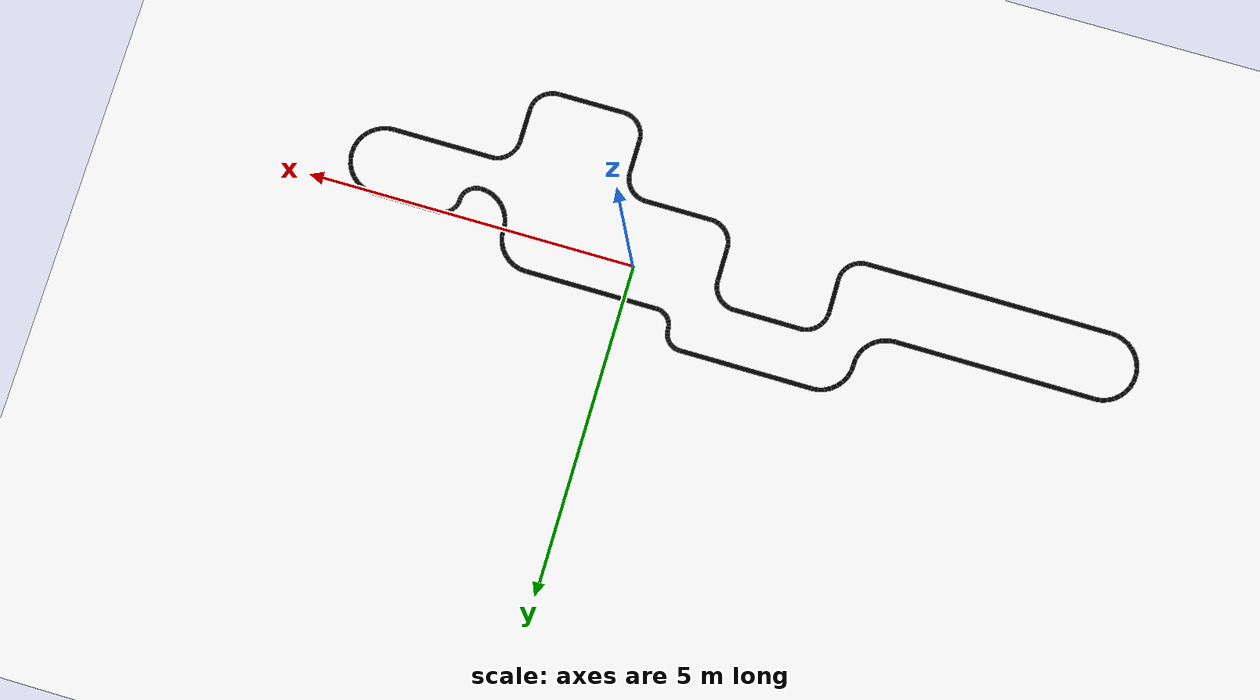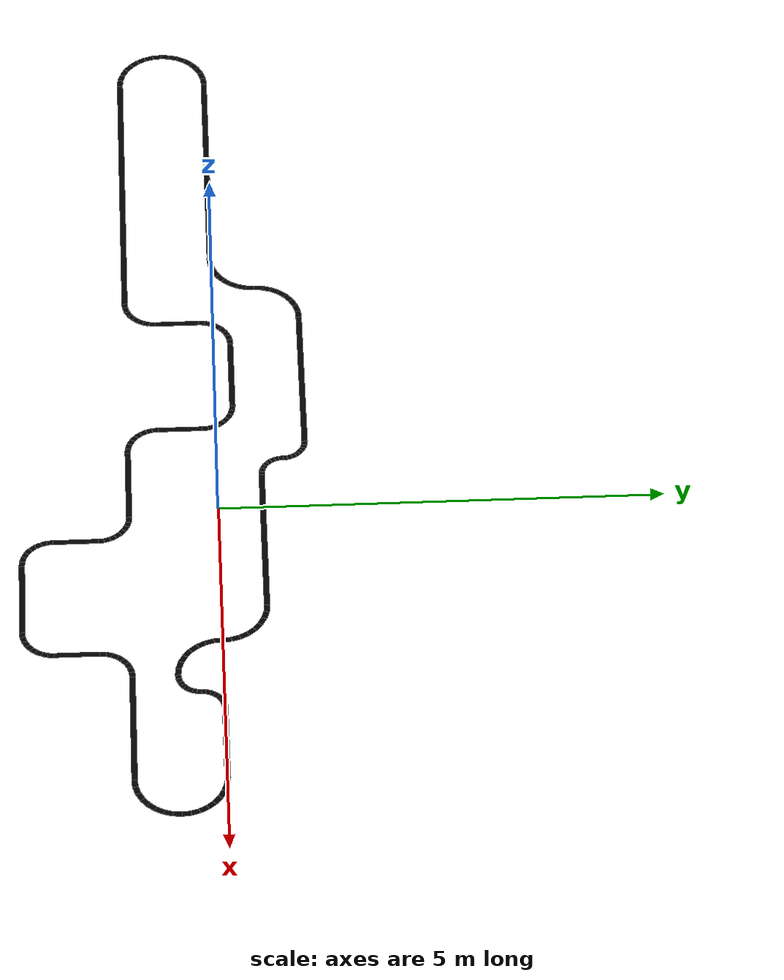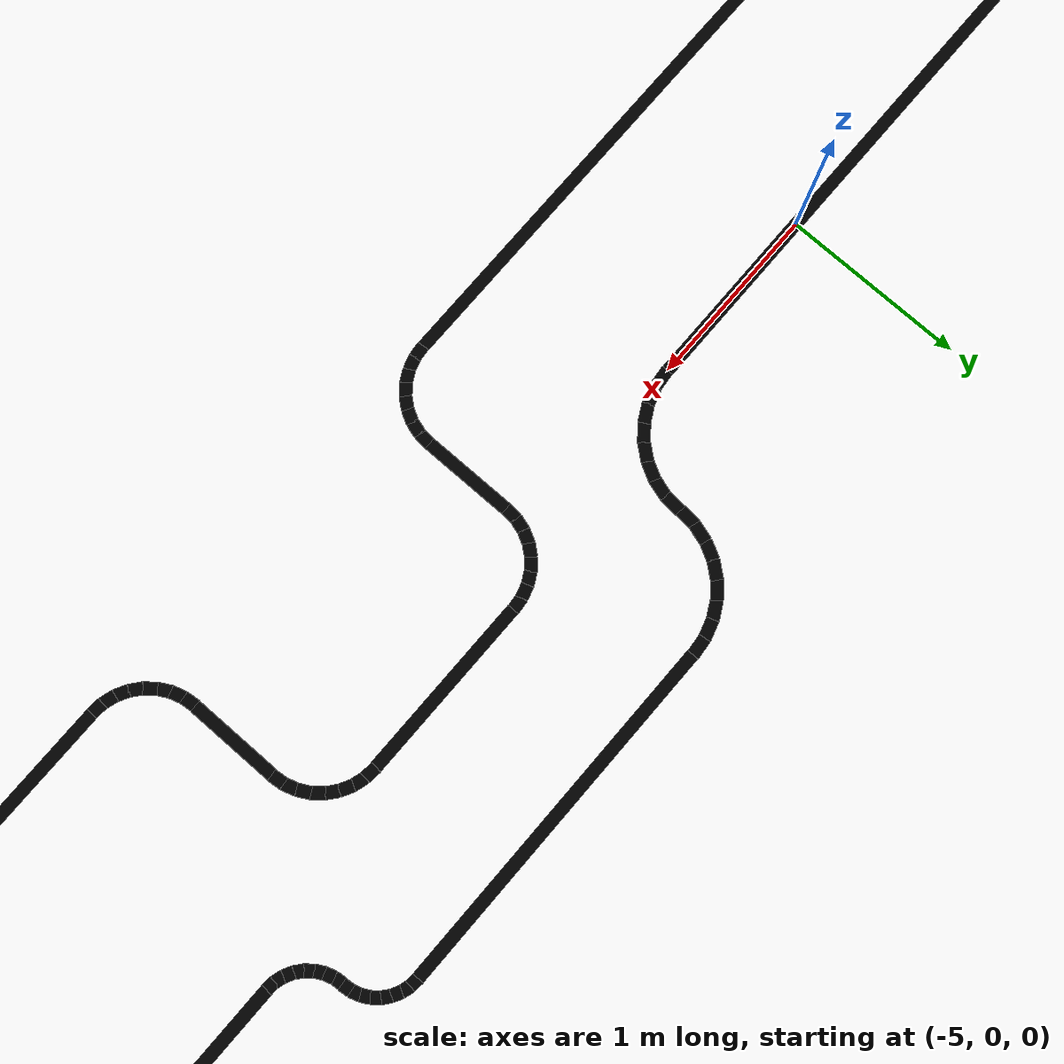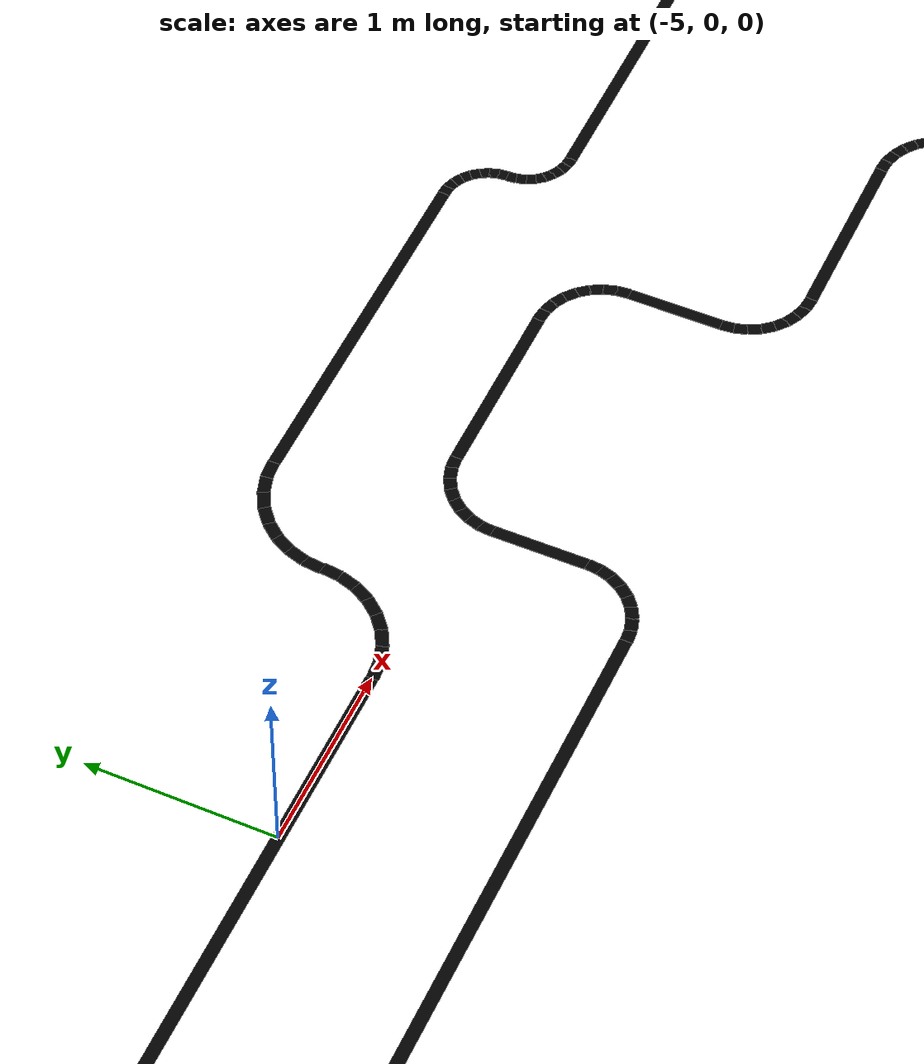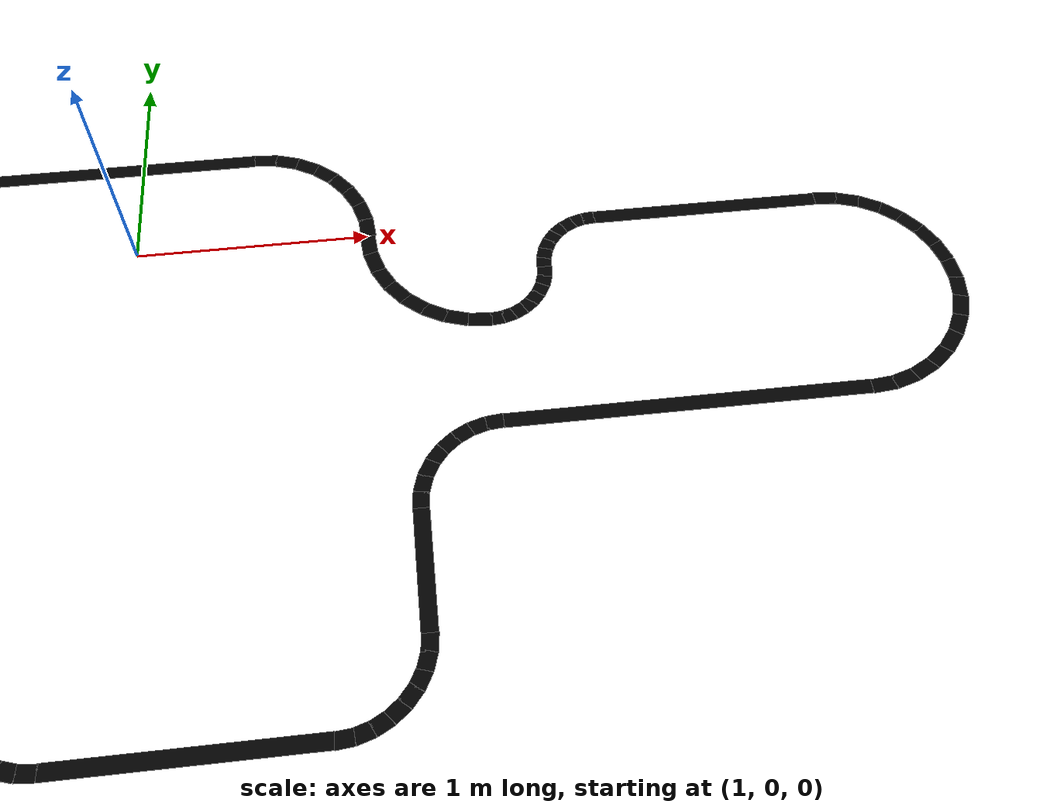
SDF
<?xml version="1.0" ?>
<sdf version="1.6">
  <world name="default">
    <include>
      <uri>model://sun</uri>
    </include>
    <include>
      <uri>model://advanced_track</uri>
    </include>
    <!-- Add some extra lighting if necessary -->
    <light type="directional" name="directional_light_1">
      <pose>0 0 10 0 -1 0</pose>
      <diffuse>0.5 0.5 0.5 1</diffuse>
      <specular>0.1 0.1 0.1 1</specular>
      <direction>0.1 0.1 -0.9</direction>
    </light>
  </world>
</sdf>

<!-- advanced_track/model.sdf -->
<sdf version="1.6">
  <model name="advanced_track">
    <static>true</static>
    <!-- White Floor -->
    <link name="floor">
      <collision name="collision">
        <geometry><plane><normal>0 0 1</normal><size>35 20</size></plane></geometry>
      </collision>
      <visual name="visual">
        <geometry><plane><normal>0 0 1</normal><size>35 20</size></plane></geometry>
        <material>
          <ambient>1 1 1 1</ambient><diffuse>1 1 1 1</diffuse>
          <specular>0.1 0.1 0.1 1</specular>
        </material>
      </visual>
    </link>
    <link name="line_1">
      <pose>-5.5000 0.0000 0.001 0 0 0.000000</pose>
      <visual name="visual">
        <geometry>
          <box><size>3.0000 0.065 0.001</size></box>
        </geometry>
        <material><ambient>0 0 0 1</ambient><diffuse>0 0 0 1</diffuse></material>
      </visual>
    </link>
    <link name="line_2">
      <pose>-3.9510 0.0024 0.001 0 0 0.098175</pose>
      <visual name="visual">
        <geometry>
          <box><size>0.1020 0.065 0.001</size></box>
        </geometry>
        <material><ambient>0 0 0 1</ambient><diffuse>0 0 0 1</diffuse></material>
      </visual>
    </link>
    <link name="line_3">
      <pose>-3.8549 0.0215 0.001 0 0 0.294524</pose>
      <visual name="visual">
        <geometry>
          <box><size>0.1020 0.065 0.001</size></box>
        </geometry>
        <material><ambient>0 0 0 1</ambient><diffuse>0 0 0 1</diffuse></material>
      </visual>
    </link>
    <link name="line_4">
      <pose>-3.7643 0.0590 0.001 0 0 0.490874</pose>
      <visual name="visual">
        <geometry>
          <box><size>0.1020 0.065 0.001</size></box>
        </geometry>
        <material><ambient>0 0 0 1</ambient><diffuse>0 0 0 1</diffuse></material>
      </visual>
    </link>
    <link name="line_5">
      <pose>-3.6828 0.1135 0.001 0 0 0.687223</pose>
      <visual name="visual">
        <geometry>
          <box><size>0.1020 0.065 0.001</size></box>
        </geometry>
        <material><ambient>0 0 0 1</ambient><diffuse>0 0 0 1</diffuse></material>
      </visual>
    </link>
    <link name="line_6">
      <pose>-3.6135 0.1828 0.001 0 0 0.883573</pose>
      <visual name="visual">
        <geometry>
          <box><size>0.1020 0.065 0.001</size></box>
        </geometry>
        <material><ambient>0 0 0 1</ambient><diffuse>0 0 0 1</diffuse></material>
      </visual>
    </link>
    <link name="line_7">
      <pose>-3.5590 0.2643 0.001 0 0 1.079922</pose>
      <visual name="visual">
        <geometry>
          <box><size>0.1020 0.065 0.001</size></box>
        </geometry>
        <material><ambient>0 0 0 1</ambient><diffuse>0 0 0 1</diffuse></material>
      </visual>
    </link>
    <link name="line_8">
      <pose>-3.5215 0.3549 0.001 0 0 1.276272</pose>
      <visual name="visual">
        <geometry>
          <box><size>0.1020 0.065 0.001</size></box>
        </geometry>
        <material><ambient>0 0 0 1</ambient><diffuse>0 0 0 1</diffuse></material>
      </visual>
    </link>
    <link name="line_9">
      <pose>-3.5024 0.4510 0.001 0 0 1.472622</pose>
      <visual name="visual">
        <geometry>
          <box><size>0.1020 0.065 0.001</size></box>
        </geometry>
        <material><ambient>0 0 0 1</ambient><diffuse>0 0 0 1</diffuse></material>
      </visual>
    </link>
    <link name="line_10">
      <pose>-3.4976 0.5490 0.001 0 0 1.472622</pose>
      <visual name="visual">
        <geometry>
          <box><size>0.1020 0.065 0.001</size></box>
        </geometry>
        <material><ambient>0 0 0 1</ambient><diffuse>0 0 0 1</diffuse></material>
      </visual>
    </link>
    <link name="line_11">
      <pose>-3.4785 0.6451 0.001 0 0 1.276272</pose>
      <visual name="visual">
        <geometry>
          <box><size>0.1020 0.065 0.001</size></box>
        </geometry>
        <material><ambient>0 0 0 1</ambient><diffuse>0 0 0 1</diffuse></material>
      </visual>
    </link>
    <link name="line_12">
      <pose>-3.4410 0.7357 0.001 0 0 1.079922</pose>
      <visual name="visual">
        <geometry>
          <box><size>0.1020 0.065 0.001</size></box>
        </geometry>
        <material><ambient>0 0 0 1</ambient><diffuse>0 0 0 1</diffuse></material>
      </visual>
    </link>
    <link name="line_13">
      <pose>-3.3865 0.8172 0.001 0 0 0.883573</pose>
      <visual name="visual">
        <geometry>
          <box><size>0.1020 0.065 0.001</size></box>
        </geometry>
        <material><ambient>0 0 0 1</ambient><diffuse>0 0 0 1</diffuse></material>
      </visual>
    </link>
    <link name="line_14">
      <pose>-3.3172 0.8865 0.001 0 0 0.687223</pose>
      <visual name="visual">
        <geometry>
          <box><size>0.1020 0.065 0.001</size></box>
        </geometry>
        <material><ambient>0 0 0 1</ambient><diffuse>0 0 0 1</diffuse></material>
      </visual>
    </link>
    <link name="line_15">
      <pose>-3.2357 0.9410 0.001 0 0 0.490874</pose>
      <visual name="visual">
        <geometry>
          <box><size>0.1020 0.065 0.001</size></box>
        </geometry>
        <material><ambient>0 0 0 1</ambient><diffuse>0 0 0 1</diffuse></material>
      </visual>
    </link>
    <link name="line_16">
      <pose>-3.1451 0.9785 0.001 0 0 0.294524</pose>
      <visual name="visual">
        <geometry>
          <box><size>0.1020 0.065 0.001</size></box>
        </geometry>
        <material><ambient>0 0 0 1</ambient><diffuse>0 0 0 1</diffuse></material>
      </visual>
    </link>
    <link name="line_17">
      <pose>-3.0490 0.9976 0.001 0 0 0.098175</pose>
      <visual name="visual">
        <geometry>
          <box><size>0.1020 0.065 0.001</size></box>
        </geometry>
        <material><ambient>0 0 0 1</ambient><diffuse>0 0 0 1</diffuse></material>
      </visual>
    </link>
    <link name="line_18">
      <pose>-2.0000 1.0000 0.001 0 0 0.000000</pose>
      <visual name="visual">
        <geometry>
          <box><size>2.0000 0.065 0.001</size></box>
        </geometry>
        <material><ambient>0 0 0 1</ambient><diffuse>0 0 0 1</diffuse></material>
      </visual>
    </link>
    <link name="line_19">
      <pose>-0.9755 0.9988 0.001 0 0 -0.098175</pose>
      <visual name="visual">
        <geometry>
          <box><size>0.0530 0.065 0.001</size></box>
        </geometry>
        <material><ambient>0 0 0 1</ambient><diffuse>0 0 0 1</diffuse></material>
      </visual>
    </link>
    <link name="line_20">
      <pose>-0.9274 0.9892 0.001 0 0 -0.294524</pose>
      <visual name="visual">
        <geometry>
          <box><size>0.0530 0.065 0.001</size></box>
        </geometry>
        <material><ambient>0 0 0 1</ambient><diffuse>0 0 0 1</diffuse></material>
      </visual>
    </link>
    <link name="line_21">
      <pose>-0.8822 0.9705 0.001 0 0 -0.490874</pose>
      <visual name="visual">
        <geometry>
          <box><size>0.0530 0.065 0.001</size></box>
        </geometry>
        <material><ambient>0 0 0 1</ambient><diffuse>0 0 0 1</diffuse></material>
      </visual>
    </link>
    <link name="line_22">
      <pose>-0.8414 0.9433 0.001 0 0 -0.687223</pose>
      <visual name="visual">
        <geometry>
          <box><size>0.0530 0.065 0.001</size></box>
        </geometry>
        <material><ambient>0 0 0 1</ambient><diffuse>0 0 0 1</diffuse></material>
      </visual>
    </link>
    <link name="line_23">
      <pose>-0.8067 0.9086 0.001 0 0 -0.883573</pose>
      <visual name="visual">
        <geometry>
          <box><size>0.0530 0.065 0.001</size></box>
        </geometry>
        <material><ambient>0 0 0 1</ambient><diffuse>0 0 0 1</diffuse></material>
      </visual>
    </link>
    <link name="line_24">
      <pose>-0.7795 0.8678 0.001 0 0 -1.079922</pose>
      <visual name="visual">
        <geometry>
          <box><size>0.0530 0.065 0.001</size></box>
        </geometry>
        <material><ambient>0 0 0 1</ambient><diffuse>0 0 0 1</diffuse></material>
      </visual>
    </link>
    <link name="line_25">
      <pose>-0.7608 0.8226 0.001 0 0 -1.276272</pose>
      <visual name="visual">
        <geometry>
          <box><size>0.0530 0.065 0.001</size></box>
        </geometry>
        <material><ambient>0 0 0 1</ambient><diffuse>0 0 0 1</diffuse></material>
      </visual>
    </link>
    <link name="line_26">
      <pose>-0.7512 0.7745 0.001 0 0 -1.472622</pose>
      <visual name="visual">
        <geometry>
          <box><size>0.0530 0.065 0.001</size></box>
        </geometry>
        <material><ambient>0 0 0 1</ambient><diffuse>0 0 0 1</diffuse></material>
      </visual>
    </link>
    <link name="line_27">
      <pose>-0.7488 0.7255 0.001 0 0 4.810564</pose>
      <visual name="visual">
        <geometry>
          <box><size>0.0530 0.065 0.001</size></box>
        </geometry>
        <material><ambient>0 0 0 1</ambient><diffuse>0 0 0 1</diffuse></material>
      </visual>
    </link>
    <link name="line_28">
      <pose>-0.7392 0.6774 0.001 0 0 5.006913</pose>
      <visual name="visual">
        <geometry>
          <box><size>0.0530 0.065 0.001</size></box>
        </geometry>
        <material><ambient>0 0 0 1</ambient><diffuse>0 0 0 1</diffuse></material>
      </visual>
    </link>
    <link name="line_29">
      <pose>-0.7205 0.6322 0.001 0 0 5.203263</pose>
      <visual name="visual">
        <geometry>
          <box><size>0.0530 0.065 0.001</size></box>
        </geometry>
        <material><ambient>0 0 0 1</ambient><diffuse>0 0 0 1</diffuse></material>
      </visual>
    </link>
    <link name="line_30">
      <pose>-0.6933 0.5914 0.001 0 0 5.399612</pose>
      <visual name="visual">
        <geometry>
          <box><size>0.0530 0.065 0.001</size></box>
        </geometry>
        <material><ambient>0 0 0 1</ambient><diffuse>0 0 0 1</diffuse></material>
      </visual>
    </link>
    <link name="line_31">
      <pose>-0.6586 0.5567 0.001 0 0 5.595962</pose>
      <visual name="visual">
        <geometry>
          <box><size>0.0530 0.065 0.001</size></box>
        </geometry>
        <material><ambient>0 0 0 1</ambient><diffuse>0 0 0 1</diffuse></material>
      </visual>
    </link>
    <link name="line_32">
      <pose>-0.6178 0.5295 0.001 0 0 5.792311</pose>
      <visual name="visual">
        <geometry>
          <box><size>0.0530 0.065 0.001</size></box>
        </geometry>
        <material><ambient>0 0 0 1</ambient><diffuse>0 0 0 1</diffuse></material>
      </visual>
    </link>
    <link name="line_33">
      <pose>-0.5726 0.5108 0.001 0 0 5.988661</pose>
      <visual name="visual">
        <geometry>
          <box><size>0.0530 0.065 0.001</size></box>
        </geometry>
        <material><ambient>0 0 0 1</ambient><diffuse>0 0 0 1</diffuse></material>
      </visual>
    </link>
    <link name="line_34">
      <pose>-0.5245 0.5012 0.001 0 0 6.185011</pose>
      <visual name="visual">
        <geometry>
          <box><size>0.0530 0.065 0.001</size></box>
        </geometry>
        <material><ambient>0 0 0 1</ambient><diffuse>0 0 0 1</diffuse></material>
      </visual>
    </link>
    <link name="line_35">
      <pose>0.5000 0.5000 0.001 0 0 0.000000</pose>
      <visual name="visual">
        <geometry>
          <box><size>2.0000 0.065 0.001</size></box>
        </geometry>
        <material><ambient>0 0 0 1</ambient><diffuse>0 0 0 1</diffuse></material>
      </visual>
    </link>
    <link name="line_36">
      <pose>1.5490 0.4976 0.001 0 0 -0.098175</pose>
      <visual name="visual">
        <geometry>
          <box><size>0.1020 0.065 0.001</size></box>
        </geometry>
        <material><ambient>0 0 0 1</ambient><diffuse>0 0 0 1</diffuse></material>
      </visual>
    </link>
    <link name="line_37">
      <pose>1.6451 0.4785 0.001 0 0 -0.294524</pose>
      <visual name="visual">
        <geometry>
          <box><size>0.1020 0.065 0.001</size></box>
        </geometry>
        <material><ambient>0 0 0 1</ambient><diffuse>0 0 0 1</diffuse></material>
      </visual>
    </link>
    <link name="line_38">
      <pose>1.7357 0.4410 0.001 0 0 -0.490874</pose>
      <visual name="visual">
        <geometry>
          <box><size>0.1020 0.065 0.001</size></box>
        </geometry>
        <material><ambient>0 0 0 1</ambient><diffuse>0 0 0 1</diffuse></material>
      </visual>
    </link>
    <link name="line_39">
      <pose>1.8172 0.3865 0.001 0 0 -0.687223</pose>
      <visual name="visual">
        <geometry>
          <box><size>0.1020 0.065 0.001</size></box>
        </geometry>
        <material><ambient>0 0 0 1</ambient><diffuse>0 0 0 1</diffuse></material>
      </visual>
    </link>
    <link name="line_40">
      <pose>1.8865 0.3172 0.001 0 0 -0.883573</pose>
      <visual name="visual">
        <geometry>
          <box><size>0.1020 0.065 0.001</size></box>
        </geometry>
        <material><ambient>0 0 0 1</ambient><diffuse>0 0 0 1</diffuse></material>
      </visual>
    </link>
    <link name="line_41">
      <pose>1.9410 0.2357 0.001 0 0 -1.079922</pose>
      <visual name="visual">
        <geometry>
          <box><size>0.1020 0.065 0.001</size></box>
        </geometry>
        <material><ambient>0 0 0 1</ambient><diffuse>0 0 0 1</diffuse></material>
      </visual>
    </link>
    <link name="line_42">
      <pose>1.9785 0.1451 0.001 0 0 -1.276272</pose>
      <visual name="visual">
        <geometry>
          <box><size>0.1020 0.065 0.001</size></box>
        </geometry>
        <material><ambient>0 0 0 1</ambient><diffuse>0 0 0 1</diffuse></material>
      </visual>
    </link>
    <link name="line_43">
      <pose>1.9976 0.0490 0.001 0 0 -1.472622</pose>
      <visual name="visual">
        <geometry>
          <box><size>0.1020 0.065 0.001</size></box>
        </geometry>
        <material><ambient>0 0 0 1</ambient><diffuse>0 0 0 1</diffuse></material>
      </visual>
    </link>
    <link name="line_44">
      <pose>2.0024 -0.0490 0.001 0 0 4.810564</pose>
      <visual name="visual">
        <geometry>
          <box><size>0.1020 0.065 0.001</size></box>
        </geometry>
        <material><ambient>0 0 0 1</ambient><diffuse>0 0 0 1</diffuse></material>
      </visual>
    </link>
    <link name="line_45">
      <pose>2.0215 -0.1451 0.001 0 0 5.006913</pose>
      <visual name="visual">
        <geometry>
          <box><size>0.1020 0.065 0.001</size></box>
        </geometry>
        <material><ambient>0 0 0 1</ambient><diffuse>0 0 0 1</diffuse></material>
      </visual>
    </link>
    <link name="line_46">
      <pose>2.0590 -0.2357 0.001 0 0 5.203263</pose>
      <visual name="visual">
        <geometry>
          <box><size>0.1020 0.065 0.001</size></box>
        </geometry>
        <material><ambient>0 0 0 1</ambient><diffuse>0 0 0 1</diffuse></material>
      </visual>
    </link>
    <link name="line_47">
      <pose>2.1135 -0.3172 0.001 0 0 5.399612</pose>
      <visual name="visual">
        <geometry>
          <box><size>0.1020 0.065 0.001</size></box>
        </geometry>
        <material><ambient>0 0 0 1</ambient><diffuse>0 0 0 1</diffuse></material>
      </visual>
    </link>
    <link name="line_48">
      <pose>2.1828 -0.3865 0.001 0 0 5.595962</pose>
      <visual name="visual">
        <geometry>
          <box><size>0.1020 0.065 0.001</size></box>
        </geometry>
        <material><ambient>0 0 0 1</ambient><diffuse>0 0 0 1</diffuse></material>
      </visual>
    </link>
    <link name="line_49">
      <pose>2.2643 -0.4410 0.001 0 0 5.792311</pose>
      <visual name="visual">
        <geometry>
          <box><size>0.1020 0.065 0.001</size></box>
        </geometry>
        <material><ambient>0 0 0 1</ambient><diffuse>0 0 0 1</diffuse></material>
      </visual>
    </link>
    <link name="line_50">
      <pose>2.3549 -0.4785 0.001 0 0 5.988661</pose>
      <visual name="visual">
        <geometry>
          <box><size>0.1020 0.065 0.001</size></box>
        </geometry>
        <material><ambient>0 0 0 1</ambient><diffuse>0 0 0 1</diffuse></material>
      </visual>
    </link>
    <link name="line_51">
      <pose>2.4510 -0.4976 0.001 0 0 6.185011</pose>
      <visual name="visual">
        <geometry>
          <box><size>0.1020 0.065 0.001</size></box>
        </geometry>
        <material><ambient>0 0 0 1</ambient><diffuse>0 0 0 1</diffuse></material>
      </visual>
    </link>
    <link name="line_52">
      <pose>2.5245 -0.4988 0.001 0 0 0.098175</pose>
      <visual name="visual">
        <geometry>
          <box><size>0.0530 0.065 0.001</size></box>
        </geometry>
        <material><ambient>0 0 0 1</ambient><diffuse>0 0 0 1</diffuse></material>
      </visual>
    </link>
    <link name="line_53">
      <pose>2.5726 -0.4892 0.001 0 0 0.294524</pose>
      <visual name="visual">
        <geometry>
          <box><size>0.0530 0.065 0.001</size></box>
        </geometry>
        <material><ambient>0 0 0 1</ambient><diffuse>0 0 0 1</diffuse></material>
      </visual>
    </link>
    <link name="line_54">
      <pose>2.6178 -0.4705 0.001 0 0 0.490874</pose>
      <visual name="visual">
        <geometry>
          <box><size>0.0530 0.065 0.001</size></box>
        </geometry>
        <material><ambient>0 0 0 1</ambient><diffuse>0 0 0 1</diffuse></material>
      </visual>
    </link>
    <link name="line_55">
      <pose>2.6586 -0.4433 0.001 0 0 0.687223</pose>
      <visual name="visual">
        <geometry>
          <box><size>0.0530 0.065 0.001</size></box>
        </geometry>
        <material><ambient>0 0 0 1</ambient><diffuse>0 0 0 1</diffuse></material>
      </visual>
    </link>
    <link name="line_56">
      <pose>2.6933 -0.4086 0.001 0 0 0.883573</pose>
      <visual name="visual">
        <geometry>
          <box><size>0.0530 0.065 0.001</size></box>
        </geometry>
        <material><ambient>0 0 0 1</ambient><diffuse>0 0 0 1</diffuse></material>
      </visual>
    </link>
    <link name="line_57">
      <pose>2.7205 -0.3678 0.001 0 0 1.079922</pose>
      <visual name="visual">
        <geometry>
          <box><size>0.0530 0.065 0.001</size></box>
        </geometry>
        <material><ambient>0 0 0 1</ambient><diffuse>0 0 0 1</diffuse></material>
      </visual>
    </link>
    <link name="line_58">
      <pose>2.7392 -0.3226 0.001 0 0 1.276272</pose>
      <visual name="visual">
        <geometry>
          <box><size>0.0530 0.065 0.001</size></box>
        </geometry>
        <material><ambient>0 0 0 1</ambient><diffuse>0 0 0 1</diffuse></material>
      </visual>
    </link>
    <link name="line_59">
      <pose>2.7488 -0.2745 0.001 0 0 1.472622</pose>
      <visual name="visual">
        <geometry>
          <box><size>0.0530 0.065 0.001</size></box>
        </geometry>
        <material><ambient>0 0 0 1</ambient><diffuse>0 0 0 1</diffuse></material>
      </visual>
    </link>
    <link name="line_60">
      <pose>2.7512 -0.2255 0.001 0 0 1.472622</pose>
      <visual name="visual">
        <geometry>
          <box><size>0.0530 0.065 0.001</size></box>
        </geometry>
        <material><ambient>0 0 0 1</ambient><diffuse>0 0 0 1</diffuse></material>
      </visual>
    </link>
    <link name="line_61">
      <pose>2.7608 -0.1774 0.001 0 0 1.276272</pose>
      <visual name="visual">
        <geometry>
          <box><size>0.0530 0.065 0.001</size></box>
        </geometry>
        <material><ambient>0 0 0 1</ambient><diffuse>0 0 0 1</diffuse></material>
      </visual>
    </link>
    <link name="line_62">
      <pose>2.7795 -0.1322 0.001 0 0 1.079922</pose>
      <visual name="visual">
        <geometry>
          <box><size>0.0530 0.065 0.001</size></box>
        </geometry>
        <material><ambient>0 0 0 1</ambient><diffuse>0 0 0 1</diffuse></material>
      </visual>
    </link>
    <link name="line_63">
      <pose>2.8067 -0.0914 0.001 0 0 0.883573</pose>
      <visual name="visual">
        <geometry>
          <box><size>0.0530 0.065 0.001</size></box>
        </geometry>
        <material><ambient>0 0 0 1</ambient><diffuse>0 0 0 1</diffuse></material>
      </visual>
    </link>
    <link name="line_64">
      <pose>2.8414 -0.0567 0.001 0 0 0.687223</pose>
      <visual name="visual">
        <geometry>
          <box><size>0.0530 0.065 0.001</size></box>
        </geometry>
        <material><ambient>0 0 0 1</ambient><diffuse>0 0 0 1</diffuse></material>
      </visual>
    </link>
    <link name="line_65">
      <pose>2.8822 -0.0295 0.001 0 0 0.490874</pose>
      <visual name="visual">
        <geometry>
          <box><size>0.0530 0.065 0.001</size></box>
        </geometry>
        <material><ambient>0 0 0 1</ambient><diffuse>0 0 0 1</diffuse></material>
      </visual>
    </link>
    <link name="line_66">
      <pose>2.9274 -0.0108 0.001 0 0 0.294524</pose>
      <visual name="visual">
        <geometry>
          <box><size>0.0530 0.065 0.001</size></box>
        </geometry>
        <material><ambient>0 0 0 1</ambient><diffuse>0 0 0 1</diffuse></material>
      </visual>
    </link>
    <link name="line_67">
      <pose>2.9755 -0.0012 0.001 0 0 0.098175</pose>
      <visual name="visual">
        <geometry>
          <box><size>0.0530 0.065 0.001</size></box>
        </geometry>
        <material><ambient>0 0 0 1</ambient><diffuse>0 0 0 1</diffuse></material>
      </visual>
    </link>
    <link name="line_68">
      <pose>3.5000 0.0000 0.001 0 0 0.000000</pose>
      <visual name="visual">
        <geometry>
          <box><size>1.0000 0.065 0.001</size></box>
        </geometry>
        <material><ambient>0 0 0 1</ambient><diffuse>0 0 0 1</diffuse></material>
      </visual>
    </link>
    <link name="line_69">
      <pose>4.0490 -0.0024 0.001 0 0 -0.098175</pose>
      <visual name="visual">
        <geometry>
          <box><size>0.1020 0.065 0.001</size></box>
        </geometry>
        <material><ambient>0 0 0 1</ambient><diffuse>0 0 0 1</diffuse></material>
      </visual>
    </link>
    <link name="line_70">
      <pose>4.1451 -0.0215 0.001 0 0 -0.294524</pose>
      <visual name="visual">
        <geometry>
          <box><size>0.1020 0.065 0.001</size></box>
        </geometry>
        <material><ambient>0 0 0 1</ambient><diffuse>0 0 0 1</diffuse></material>
      </visual>
    </link>
    <link name="line_71">
      <pose>4.2357 -0.0590 0.001 0 0 -0.490874</pose>
      <visual name="visual">
        <geometry>
          <box><size>0.1020 0.065 0.001</size></box>
        </geometry>
        <material><ambient>0 0 0 1</ambient><diffuse>0 0 0 1</diffuse></material>
      </visual>
    </link>
    <link name="line_72">
      <pose>4.3172 -0.1135 0.001 0 0 -0.687223</pose>
      <visual name="visual">
        <geometry>
          <box><size>0.1020 0.065 0.001</size></box>
        </geometry>
        <material><ambient>0 0 0 1</ambient><diffuse>0 0 0 1</diffuse></material>
      </visual>
    </link>
    <link name="line_73">
      <pose>4.3865 -0.1828 0.001 0 0 -0.883573</pose>
      <visual name="visual">
        <geometry>
          <box><size>0.1020 0.065 0.001</size></box>
        </geometry>
        <material><ambient>0 0 0 1</ambient><diffuse>0 0 0 1</diffuse></material>
      </visual>
    </link>
    <link name="line_74">
      <pose>4.4410 -0.2643 0.001 0 0 -1.079922</pose>
      <visual name="visual">
        <geometry>
          <box><size>0.1020 0.065 0.001</size></box>
        </geometry>
        <material><ambient>0 0 0 1</ambient><diffuse>0 0 0 1</diffuse></material>
      </visual>
    </link>
    <link name="line_75">
      <pose>4.4785 -0.3549 0.001 0 0 -1.276272</pose>
      <visual name="visual">
        <geometry>
          <box><size>0.1020 0.065 0.001</size></box>
        </geometry>
        <material><ambient>0 0 0 1</ambient><diffuse>0 0 0 1</diffuse></material>
      </visual>
    </link>
    <link name="line_76">
      <pose>4.4976 -0.4510 0.001 0 0 -1.472622</pose>
      <visual name="visual">
        <geometry>
          <box><size>0.1020 0.065 0.001</size></box>
        </geometry>
        <material><ambient>0 0 0 1</ambient><diffuse>0 0 0 1</diffuse></material>
      </visual>
    </link>
    <link name="line_77">
      <pose>4.4976 -0.5490 0.001 0 0 -1.668971</pose>
      <visual name="visual">
        <geometry>
          <box><size>0.1020 0.065 0.001</size></box>
        </geometry>
        <material><ambient>0 0 0 1</ambient><diffuse>0 0 0 1</diffuse></material>
      </visual>
    </link>
    <link name="line_78">
      <pose>4.4785 -0.6451 0.001 0 0 -1.865321</pose>
      <visual name="visual">
        <geometry>
          <box><size>0.1020 0.065 0.001</size></box>
        </geometry>
        <material><ambient>0 0 0 1</ambient><diffuse>0 0 0 1</diffuse></material>
      </visual>
    </link>
    <link name="line_79">
      <pose>4.4410 -0.7357 0.001 0 0 -2.061670</pose>
      <visual name="visual">
        <geometry>
          <box><size>0.1020 0.065 0.001</size></box>
        </geometry>
        <material><ambient>0 0 0 1</ambient><diffuse>0 0 0 1</diffuse></material>
      </visual>
    </link>
    <link name="line_80">
      <pose>4.3865 -0.8172 0.001 0 0 -2.258020</pose>
      <visual name="visual">
        <geometry>
          <box><size>0.1020 0.065 0.001</size></box>
        </geometry>
        <material><ambient>0 0 0 1</ambient><diffuse>0 0 0 1</diffuse></material>
      </visual>
    </link>
    <link name="line_81">
      <pose>4.3172 -0.8865 0.001 0 0 -2.454369</pose>
      <visual name="visual">
        <geometry>
          <box><size>0.1020 0.065 0.001</size></box>
        </geometry>
        <material><ambient>0 0 0 1</ambient><diffuse>0 0 0 1</diffuse></material>
      </visual>
    </link>
    <link name="line_82">
      <pose>4.2357 -0.9410 0.001 0 0 -2.650719</pose>
      <visual name="visual">
        <geometry>
          <box><size>0.1020 0.065 0.001</size></box>
        </geometry>
        <material><ambient>0 0 0 1</ambient><diffuse>0 0 0 1</diffuse></material>
      </visual>
    </link>
    <link name="line_83">
      <pose>4.1451 -0.9785 0.001 0 0 -2.847068</pose>
      <visual name="visual">
        <geometry>
          <box><size>0.1020 0.065 0.001</size></box>
        </geometry>
        <material><ambient>0 0 0 1</ambient><diffuse>0 0 0 1</diffuse></material>
      </visual>
    </link>
    <link name="line_84">
      <pose>4.0490 -0.9976 0.001 0 0 -3.043418</pose>
      <visual name="visual">
        <geometry>
          <box><size>0.1020 0.065 0.001</size></box>
        </geometry>
        <material><ambient>0 0 0 1</ambient><diffuse>0 0 0 1</diffuse></material>
      </visual>
    </link>
    <link name="line_85">
      <pose>3.2500 -1.0000 0.001 0 0 -3.141593</pose>
      <visual name="visual">
        <geometry>
          <box><size>1.5000 0.065 0.001</size></box>
        </geometry>
        <material><ambient>0 0 0 1</ambient><diffuse>0 0 0 1</diffuse></material>
      </visual>
    </link>
    <link name="line_86">
      <pose>2.4657 -1.0017 0.001 0 0 3.239767</pose>
      <visual name="visual">
        <geometry>
          <box><size>0.0726 0.065 0.001</size></box>
        </geometry>
        <material><ambient>0 0 0 1</ambient><diffuse>0 0 0 1</diffuse></material>
      </visual>
    </link>
    <link name="line_87">
      <pose>2.3984 -1.0151 0.001 0 0 3.436117</pose>
      <visual name="visual">
        <geometry>
          <box><size>0.0726 0.065 0.001</size></box>
        </geometry>
        <material><ambient>0 0 0 1</ambient><diffuse>0 0 0 1</diffuse></material>
      </visual>
    </link>
    <link name="line_88">
      <pose>2.3350 -1.0413 0.001 0 0 3.632467</pose>
      <visual name="visual">
        <geometry>
          <box><size>0.0726 0.065 0.001</size></box>
        </geometry>
        <material><ambient>0 0 0 1</ambient><diffuse>0 0 0 1</diffuse></material>
      </visual>
    </link>
    <link name="line_89">
      <pose>2.2780 -1.0794 0.001 0 0 3.828816</pose>
      <visual name="visual">
        <geometry>
          <box><size>0.0726 0.065 0.001</size></box>
        </geometry>
        <material><ambient>0 0 0 1</ambient><diffuse>0 0 0 1</diffuse></material>
      </visual>
    </link>
    <link name="line_90">
      <pose>2.2294 -1.1280 0.001 0 0 4.025166</pose>
      <visual name="visual">
        <geometry>
          <box><size>0.0726 0.065 0.001</size></box>
        </geometry>
        <material><ambient>0 0 0 1</ambient><diffuse>0 0 0 1</diffuse></material>
      </visual>
    </link>
    <link name="line_91">
      <pose>2.1913 -1.1850 0.001 0 0 4.221515</pose>
      <visual name="visual">
        <geometry>
          <box><size>0.0726 0.065 0.001</size></box>
        </geometry>
        <material><ambient>0 0 0 1</ambient><diffuse>0 0 0 1</diffuse></material>
      </visual>
    </link>
    <link name="line_92">
      <pose>2.1651 -1.2484 0.001 0 0 4.417865</pose>
      <visual name="visual">
        <geometry>
          <box><size>0.0726 0.065 0.001</size></box>
        </geometry>
        <material><ambient>0 0 0 1</ambient><diffuse>0 0 0 1</diffuse></material>
      </visual>
    </link>
    <link name="line_93">
      <pose>2.1517 -1.3157 0.001 0 0 4.614214</pose>
      <visual name="visual">
        <geometry>
          <box><size>0.0726 0.065 0.001</size></box>
        </geometry>
        <material><ambient>0 0 0 1</ambient><diffuse>0 0 0 1</diffuse></material>
      </visual>
    </link>
    <link name="line_94">
      <pose>2.1500 -1.6000 0.001 0 0 -1.570796</pose>
      <visual name="visual">
        <geometry>
          <box><size>0.5000 0.065 0.001</size></box>
        </geometry>
        <material><ambient>0 0 0 1</ambient><diffuse>0 0 0 1</diffuse></material>
      </visual>
    </link>
    <link name="line_95">
      <pose>2.1483 -1.8843 0.001 0 0 -1.668971</pose>
      <visual name="visual">
        <geometry>
          <box><size>0.0726 0.065 0.001</size></box>
        </geometry>
        <material><ambient>0 0 0 1</ambient><diffuse>0 0 0 1</diffuse></material>
      </visual>
    </link>
    <link name="line_96">
      <pose>2.1349 -1.9516 0.001 0 0 -1.865321</pose>
      <visual name="visual">
        <geometry>
          <box><size>0.0726 0.065 0.001</size></box>
        </geometry>
        <material><ambient>0 0 0 1</ambient><diffuse>0 0 0 1</diffuse></material>
      </visual>
    </link>
    <link name="line_97">
      <pose>2.1087 -2.0150 0.001 0 0 -2.061670</pose>
      <visual name="visual">
        <geometry>
          <box><size>0.0726 0.065 0.001</size></box>
        </geometry>
        <material><ambient>0 0 0 1</ambient><diffuse>0 0 0 1</diffuse></material>
      </visual>
    </link>
    <link name="line_98">
      <pose>2.0706 -2.0720 0.001 0 0 -2.258020</pose>
      <visual name="visual">
        <geometry>
          <box><size>0.0726 0.065 0.001</size></box>
        </geometry>
        <material><ambient>0 0 0 1</ambient><diffuse>0 0 0 1</diffuse></material>
      </visual>
    </link>
    <link name="line_99">
      <pose>2.0220 -2.1206 0.001 0 0 -2.454369</pose>
      <visual name="visual">
        <geometry>
          <box><size>0.0726 0.065 0.001</size></box>
        </geometry>
        <material><ambient>0 0 0 1</ambient><diffuse>0 0 0 1</diffuse></material>
      </visual>
    </link>
    <link name="line_100">
      <pose>1.9650 -2.1587 0.001 0 0 -2.650719</pose>
      <visual name="visual">
        <geometry>
          <box><size>0.0726 0.065 0.001</size></box>
        </geometry>
        <material><ambient>0 0 0 1</ambient><diffuse>0 0 0 1</diffuse></material>
      </visual>
    </link>
    <link name="line_101">
      <pose>1.9016 -2.1849 0.001 0 0 -2.847068</pose>
      <visual name="visual">
        <geometry>
          <box><size>0.0726 0.065 0.001</size></box>
        </geometry>
        <material><ambient>0 0 0 1</ambient><diffuse>0 0 0 1</diffuse></material>
      </visual>
    </link>
    <link name="line_102">
      <pose>1.8343 -2.1983 0.001 0 0 -3.043418</pose>
      <visual name="visual">
        <geometry>
          <box><size>0.0726 0.065 0.001</size></box>
        </geometry>
        <material><ambient>0 0 0 1</ambient><diffuse>0 0 0 1</diffuse></material>
      </visual>
    </link>
    <link name="line_103">
      <pose>1.3000 -2.2000 0.001 0 0 -3.141593</pose>
      <visual name="visual">
        <geometry>
          <box><size>1.0000 0.065 0.001</size></box>
        </geometry>
        <material><ambient>0 0 0 1</ambient><diffuse>0 0 0 1</diffuse></material>
      </visual>
    </link>
    <link name="line_104">
      <pose>0.7657 -2.1983 0.001 0 0 -3.239767</pose>
      <visual name="visual">
        <geometry>
          <box><size>0.0726 0.065 0.001</size></box>
        </geometry>
        <material><ambient>0 0 0 1</ambient><diffuse>0 0 0 1</diffuse></material>
      </visual>
    </link>
    <link name="line_105">
      <pose>0.6984 -2.1849 0.001 0 0 -3.436117</pose>
      <visual name="visual">
        <geometry>
          <box><size>0.0726 0.065 0.001</size></box>
        </geometry>
        <material><ambient>0 0 0 1</ambient><diffuse>0 0 0 1</diffuse></material>
      </visual>
    </link>
    <link name="line_106">
      <pose>0.6350 -2.1587 0.001 0 0 -3.632467</pose>
      <visual name="visual">
        <geometry>
          <box><size>0.0726 0.065 0.001</size></box>
        </geometry>
        <material><ambient>0 0 0 1</ambient><diffuse>0 0 0 1</diffuse></material>
      </visual>
    </link>
    <link name="line_107">
      <pose>0.5780 -2.1206 0.001 0 0 -3.828816</pose>
      <visual name="visual">
        <geometry>
          <box><size>0.0726 0.065 0.001</size></box>
        </geometry>
        <material><ambient>0 0 0 1</ambient><diffuse>0 0 0 1</diffuse></material>
      </visual>
    </link>
    <link name="line_108">
      <pose>0.5294 -2.0720 0.001 0 0 -4.025166</pose>
      <visual name="visual">
        <geometry>
          <box><size>0.0726 0.065 0.001</size></box>
        </geometry>
        <material><ambient>0 0 0 1</ambient><diffuse>0 0 0 1</diffuse></material>
      </visual>
    </link>
    <link name="line_109">
      <pose>0.4913 -2.0150 0.001 0 0 -4.221515</pose>
      <visual name="visual">
        <geometry>
          <box><size>0.0726 0.065 0.001</size></box>
        </geometry>
        <material><ambient>0 0 0 1</ambient><diffuse>0 0 0 1</diffuse></material>
      </visual>
    </link>
    <link name="line_110">
      <pose>0.4651 -1.9516 0.001 0 0 -4.417865</pose>
      <visual name="visual">
        <geometry>
          <box><size>0.0726 0.065 0.001</size></box>
        </geometry>
        <material><ambient>0 0 0 1</ambient><diffuse>0 0 0 1</diffuse></material>
      </visual>
    </link>
    <link name="line_111">
      <pose>0.4517 -1.8843 0.001 0 0 -4.614214</pose>
      <visual name="visual">
        <geometry>
          <box><size>0.0726 0.065 0.001</size></box>
        </geometry>
        <material><ambient>0 0 0 1</ambient><diffuse>0 0 0 1</diffuse></material>
      </visual>
    </link>
    <link name="line_112">
      <pose>0.4500 -1.6000 0.001 0 0 -4.712389</pose>
      <visual name="visual">
        <geometry>
          <box><size>0.5000 0.065 0.001</size></box>
        </geometry>
        <material><ambient>0 0 0 1</ambient><diffuse>0 0 0 1</diffuse></material>
      </visual>
    </link>
    <link name="line_113">
      <pose>0.4483 -1.3157 0.001 0 0 1.668971</pose>
      <visual name="visual">
        <geometry>
          <box><size>0.0726 0.065 0.001</size></box>
        </geometry>
        <material><ambient>0 0 0 1</ambient><diffuse>0 0 0 1</diffuse></material>
      </visual>
    </link>
    <link name="line_114">
      <pose>0.4349 -1.2484 0.001 0 0 1.865321</pose>
      <visual name="visual">
        <geometry>
          <box><size>0.0726 0.065 0.001</size></box>
        </geometry>
        <material><ambient>0 0 0 1</ambient><diffuse>0 0 0 1</diffuse></material>
      </visual>
    </link>
    <link name="line_115">
      <pose>0.4087 -1.1850 0.001 0 0 2.061670</pose>
      <visual name="visual">
        <geometry>
          <box><size>0.0726 0.065 0.001</size></box>
        </geometry>
        <material><ambient>0 0 0 1</ambient><diffuse>0 0 0 1</diffuse></material>
      </visual>
    </link>
    <link name="line_116">
      <pose>0.3706 -1.1280 0.001 0 0 2.258020</pose>
      <visual name="visual">
        <geometry>
          <box><size>0.0726 0.065 0.001</size></box>
        </geometry>
        <material><ambient>0 0 0 1</ambient><diffuse>0 0 0 1</diffuse></material>
      </visual>
    </link>
    <link name="line_117">
      <pose>0.3220 -1.0794 0.001 0 0 2.454369</pose>
      <visual name="visual">
        <geometry>
          <box><size>0.0726 0.065 0.001</size></box>
        </geometry>
        <material><ambient>0 0 0 1</ambient><diffuse>0 0 0 1</diffuse></material>
      </visual>
    </link>
    <link name="line_118">
      <pose>0.2650 -1.0413 0.001 0 0 2.650719</pose>
      <visual name="visual">
        <geometry>
          <box><size>0.0726 0.065 0.001</size></box>
        </geometry>
        <material><ambient>0 0 0 1</ambient><diffuse>0 0 0 1</diffuse></material>
      </visual>
    </link>
    <link name="line_119">
      <pose>0.2016 -1.0151 0.001 0 0 2.847068</pose>
      <visual name="visual">
        <geometry>
          <box><size>0.0726 0.065 0.001</size></box>
        </geometry>
        <material><ambient>0 0 0 1</ambient><diffuse>0 0 0 1</diffuse></material>
      </visual>
    </link>
    <link name="line_120">
      <pose>0.1343 -1.0017 0.001 0 0 3.043418</pose>
      <visual name="visual">
        <geometry>
          <box><size>0.0726 0.065 0.001</size></box>
        </geometry>
        <material><ambient>0 0 0 1</ambient><diffuse>0 0 0 1</diffuse></material>
      </visual>
    </link>
    <link name="line_121">
      <pose>-0.4000 -1.0000 0.001 0 0 -3.141593</pose>
      <visual name="visual">
        <geometry>
          <box><size>1.0000 0.065 0.001</size></box>
        </geometry>
        <material><ambient>0 0 0 1</ambient><diffuse>0 0 0 1</diffuse></material>
      </visual>
    </link>
    <link name="line_122">
      <pose>-0.9343 -0.9983 0.001 0 0 -3.239767</pose>
      <visual name="visual">
        <geometry>
          <box><size>0.0726 0.065 0.001</size></box>
        </geometry>
        <material><ambient>0 0 0 1</ambient><diffuse>0 0 0 1</diffuse></material>
      </visual>
    </link>
    <link name="line_123">
      <pose>-1.0016 -0.9849 0.001 0 0 -3.436117</pose>
      <visual name="visual">
        <geometry>
          <box><size>0.0726 0.065 0.001</size></box>
        </geometry>
        <material><ambient>0 0 0 1</ambient><diffuse>0 0 0 1</diffuse></material>
      </visual>
    </link>
    <link name="line_124">
      <pose>-1.0650 -0.9587 0.001 0 0 -3.632467</pose>
      <visual name="visual">
        <geometry>
          <box><size>0.0726 0.065 0.001</size></box>
        </geometry>
        <material><ambient>0 0 0 1</ambient><diffuse>0 0 0 1</diffuse></material>
      </visual>
    </link>
    <link name="line_125">
      <pose>-1.1220 -0.9206 0.001 0 0 -3.828816</pose>
      <visual name="visual">
        <geometry>
          <box><size>0.0726 0.065 0.001</size></box>
        </geometry>
        <material><ambient>0 0 0 1</ambient><diffuse>0 0 0 1</diffuse></material>
      </visual>
    </link>
    <link name="line_126">
      <pose>-1.1706 -0.8720 0.001 0 0 -4.025166</pose>
      <visual name="visual">
        <geometry>
          <box><size>0.0726 0.065 0.001</size></box>
        </geometry>
        <material><ambient>0 0 0 1</ambient><diffuse>0 0 0 1</diffuse></material>
      </visual>
    </link>
    <link name="line_127">
      <pose>-1.2087 -0.8150 0.001 0 0 -4.221515</pose>
      <visual name="visual">
        <geometry>
          <box><size>0.0726 0.065 0.001</size></box>
        </geometry>
        <material><ambient>0 0 0 1</ambient><diffuse>0 0 0 1</diffuse></material>
      </visual>
    </link>
    <link name="line_128">
      <pose>-1.2349 -0.7516 0.001 0 0 -4.417865</pose>
      <visual name="visual">
        <geometry>
          <box><size>0.0726 0.065 0.001</size></box>
        </geometry>
        <material><ambient>0 0 0 1</ambient><diffuse>0 0 0 1</diffuse></material>
      </visual>
    </link>
    <link name="line_129">
      <pose>-1.2483 -0.6843 0.001 0 0 -4.614214</pose>
      <visual name="visual">
        <geometry>
          <box><size>0.0726 0.065 0.001</size></box>
        </geometry>
        <material><ambient>0 0 0 1</ambient><diffuse>0 0 0 1</diffuse></material>
      </visual>
    </link>
    <link name="line_130">
      <pose>-1.2500 -0.4000 0.001 0 0 -4.712389</pose>
      <visual name="visual">
        <geometry>
          <box><size>0.5000 0.065 0.001</size></box>
        </geometry>
        <material><ambient>0 0 0 1</ambient><diffuse>0 0 0 1</diffuse></material>
      </visual>
    </link>
    <link name="line_131">
      <pose>-1.2517 -0.1157 0.001 0 0 1.668971</pose>
      <visual name="visual">
        <geometry>
          <box><size>0.0726 0.065 0.001</size></box>
        </geometry>
        <material><ambient>0 0 0 1</ambient><diffuse>0 0 0 1</diffuse></material>
      </visual>
    </link>
    <link name="line_132">
      <pose>-1.2651 -0.0484 0.001 0 0 1.865321</pose>
      <visual name="visual">
        <geometry>
          <box><size>0.0726 0.065 0.001</size></box>
        </geometry>
        <material><ambient>0 0 0 1</ambient><diffuse>0 0 0 1</diffuse></material>
      </visual>
    </link>
    <link name="line_133">
      <pose>-1.2913 0.0150 0.001 0 0 2.061670</pose>
      <visual name="visual">
        <geometry>
          <box><size>0.0726 0.065 0.001</size></box>
        </geometry>
        <material><ambient>0 0 0 1</ambient><diffuse>0 0 0 1</diffuse></material>
      </visual>
    </link>
    <link name="line_134">
      <pose>-1.3294 0.0720 0.001 0 0 2.258020</pose>
      <visual name="visual">
        <geometry>
          <box><size>0.0726 0.065 0.001</size></box>
        </geometry>
        <material><ambient>0 0 0 1</ambient><diffuse>0 0 0 1</diffuse></material>
      </visual>
    </link>
    <link name="line_135">
      <pose>-1.3780 0.1206 0.001 0 0 2.454369</pose>
      <visual name="visual">
        <geometry>
          <box><size>0.0726 0.065 0.001</size></box>
        </geometry>
        <material><ambient>0 0 0 1</ambient><diffuse>0 0 0 1</diffuse></material>
      </visual>
    </link>
    <link name="line_136">
      <pose>-1.4350 0.1587 0.001 0 0 2.650719</pose>
      <visual name="visual">
        <geometry>
          <box><size>0.0726 0.065 0.001</size></box>
        </geometry>
        <material><ambient>0 0 0 1</ambient><diffuse>0 0 0 1</diffuse></material>
      </visual>
    </link>
    <link name="line_137">
      <pose>-1.4984 0.1849 0.001 0 0 2.847068</pose>
      <visual name="visual">
        <geometry>
          <box><size>0.0726 0.065 0.001</size></box>
        </geometry>
        <material><ambient>0 0 0 1</ambient><diffuse>0 0 0 1</diffuse></material>
      </visual>
    </link>
    <link name="line_138">
      <pose>-1.5657 0.1983 0.001 0 0 3.043418</pose>
      <visual name="visual">
        <geometry>
          <box><size>0.0726 0.065 0.001</size></box>
        </geometry>
        <material><ambient>0 0 0 1</ambient><diffuse>0 0 0 1</diffuse></material>
      </visual>
    </link>
    <link name="line_139">
      <pose>-2.1000 0.2000 0.001 0 0 -3.141593</pose>
      <visual name="visual">
        <geometry>
          <box><size>1.0000 0.065 0.001</size></box>
        </geometry>
        <material><ambient>0 0 0 1</ambient><diffuse>0 0 0 1</diffuse></material>
      </visual>
    </link>
    <link name="line_140">
      <pose>-2.6343 0.1983 0.001 0 0 3.239767</pose>
      <visual name="visual">
        <geometry>
          <box><size>0.0726 0.065 0.001</size></box>
        </geometry>
        <material><ambient>0 0 0 1</ambient><diffuse>0 0 0 1</diffuse></material>
      </visual>
    </link>
    <link name="line_141">
      <pose>-2.7016 0.1849 0.001 0 0 3.436117</pose>
      <visual name="visual">
        <geometry>
          <box><size>0.0726 0.065 0.001</size></box>
        </geometry>
        <material><ambient>0 0 0 1</ambient><diffuse>0 0 0 1</diffuse></material>
      </visual>
    </link>
    <link name="line_142">
      <pose>-2.7650 0.1587 0.001 0 0 3.632467</pose>
      <visual name="visual">
        <geometry>
          <box><size>0.0726 0.065 0.001</size></box>
        </geometry>
        <material><ambient>0 0 0 1</ambient><diffuse>0 0 0 1</diffuse></material>
      </visual>
    </link>
    <link name="line_143">
      <pose>-2.8220 0.1206 0.001 0 0 3.828816</pose>
      <visual name="visual">
        <geometry>
          <box><size>0.0726 0.065 0.001</size></box>
        </geometry>
        <material><ambient>0 0 0 1</ambient><diffuse>0 0 0 1</diffuse></material>
      </visual>
    </link>
    <link name="line_144">
      <pose>-2.8706 0.0720 0.001 0 0 4.025166</pose>
      <visual name="visual">
        <geometry>
          <box><size>0.0726 0.065 0.001</size></box>
        </geometry>
        <material><ambient>0 0 0 1</ambient><diffuse>0 0 0 1</diffuse></material>
      </visual>
    </link>
    <link name="line_145">
      <pose>-2.9087 0.0150 0.001 0 0 4.221515</pose>
      <visual name="visual">
        <geometry>
          <box><size>0.0726 0.065 0.001</size></box>
        </geometry>
        <material><ambient>0 0 0 1</ambient><diffuse>0 0 0 1</diffuse></material>
      </visual>
    </link>
    <link name="line_146">
      <pose>-2.9349 -0.0484 0.001 0 0 4.417865</pose>
      <visual name="visual">
        <geometry>
          <box><size>0.0726 0.065 0.001</size></box>
        </geometry>
        <material><ambient>0 0 0 1</ambient><diffuse>0 0 0 1</diffuse></material>
      </visual>
    </link>
    <link name="line_147">
      <pose>-2.9483 -0.1157 0.001 0 0 4.614214</pose>
      <visual name="visual">
        <geometry>
          <box><size>0.0726 0.065 0.001</size></box>
        </geometry>
        <material><ambient>0 0 0 1</ambient><diffuse>0 0 0 1</diffuse></material>
      </visual>
    </link>
    <link name="line_148">
      <pose>-2.9500 -0.4000 0.001 0 0 -1.570796</pose>
      <visual name="visual">
        <geometry>
          <box><size>0.5000 0.065 0.001</size></box>
        </geometry>
        <material><ambient>0 0 0 1</ambient><diffuse>0 0 0 1</diffuse></material>
      </visual>
    </link>
    <link name="line_149">
      <pose>-2.9517 -0.6843 0.001 0 0 -1.668971</pose>
      <visual name="visual">
        <geometry>
          <box><size>0.0726 0.065 0.001</size></box>
        </geometry>
        <material><ambient>0 0 0 1</ambient><diffuse>0 0 0 1</diffuse></material>
      </visual>
    </link>
    <link name="line_150">
      <pose>-2.9651 -0.7516 0.001 0 0 -1.865321</pose>
      <visual name="visual">
        <geometry>
          <box><size>0.0726 0.065 0.001</size></box>
        </geometry>
        <material><ambient>0 0 0 1</ambient><diffuse>0 0 0 1</diffuse></material>
      </visual>
    </link>
    <link name="line_151">
      <pose>-2.9913 -0.8150 0.001 0 0 -2.061670</pose>
      <visual name="visual">
        <geometry>
          <box><size>0.0726 0.065 0.001</size></box>
        </geometry>
        <material><ambient>0 0 0 1</ambient><diffuse>0 0 0 1</diffuse></material>
      </visual>
    </link>
    <link name="line_152">
      <pose>-3.0294 -0.8720 0.001 0 0 -2.258020</pose>
      <visual name="visual">
        <geometry>
          <box><size>0.0726 0.065 0.001</size></box>
        </geometry>
        <material><ambient>0 0 0 1</ambient><diffuse>0 0 0 1</diffuse></material>
      </visual>
    </link>
    <link name="line_153">
      <pose>-3.0780 -0.9206 0.001 0 0 -2.454369</pose>
      <visual name="visual">
        <geometry>
          <box><size>0.0726 0.065 0.001</size></box>
        </geometry>
        <material><ambient>0 0 0 1</ambient><diffuse>0 0 0 1</diffuse></material>
      </visual>
    </link>
    <link name="line_154">
      <pose>-3.1350 -0.9587 0.001 0 0 -2.650719</pose>
      <visual name="visual">
        <geometry>
          <box><size>0.0726 0.065 0.001</size></box>
        </geometry>
        <material><ambient>0 0 0 1</ambient><diffuse>0 0 0 1</diffuse></material>
      </visual>
    </link>
    <link name="line_155">
      <pose>-3.1984 -0.9849 0.001 0 0 -2.847068</pose>
      <visual name="visual">
        <geometry>
          <box><size>0.0726 0.065 0.001</size></box>
        </geometry>
        <material><ambient>0 0 0 1</ambient><diffuse>0 0 0 1</diffuse></material>
      </visual>
    </link>
    <link name="line_156">
      <pose>-3.2657 -0.9983 0.001 0 0 -3.043418</pose>
      <visual name="visual">
        <geometry>
          <box><size>0.0726 0.065 0.001</size></box>
        </geometry>
        <material><ambient>0 0 0 1</ambient><diffuse>0 0 0 1</diffuse></material>
      </visual>
    </link>
    <link name="line_157">
      <pose>-5.1500 -1.0000 0.001 0 0 -3.141593</pose>
      <visual name="visual">
        <geometry>
          <box><size>3.7000 0.065 0.001</size></box>
        </geometry>
        <material><ambient>0 0 0 1</ambient><diffuse>0 0 0 1</diffuse></material>
      </visual>
    </link>
    <link name="line_158">
      <pose>-7.0490 -0.9976 0.001 0 0 -3.239767</pose>
      <visual name="visual">
        <geometry>
          <box><size>0.1020 0.065 0.001</size></box>
        </geometry>
        <material><ambient>0 0 0 1</ambient><diffuse>0 0 0 1</diffuse></material>
      </visual>
    </link>
    <link name="line_159">
      <pose>-7.1451 -0.9785 0.001 0 0 -3.436117</pose>
      <visual name="visual">
        <geometry>
          <box><size>0.1020 0.065 0.001</size></box>
        </geometry>
        <material><ambient>0 0 0 1</ambient><diffuse>0 0 0 1</diffuse></material>
      </visual>
    </link>
    <link name="line_160">
      <pose>-7.2357 -0.9410 0.001 0 0 -3.632467</pose>
      <visual name="visual">
        <geometry>
          <box><size>0.1020 0.065 0.001</size></box>
        </geometry>
        <material><ambient>0 0 0 1</ambient><diffuse>0 0 0 1</diffuse></material>
      </visual>
    </link>
    <link name="line_161">
      <pose>-7.3172 -0.8865 0.001 0 0 -3.828816</pose>
      <visual name="visual">
        <geometry>
          <box><size>0.1020 0.065 0.001</size></box>
        </geometry>
        <material><ambient>0 0 0 1</ambient><diffuse>0 0 0 1</diffuse></material>
      </visual>
    </link>
    <link name="line_162">
      <pose>-7.3865 -0.8172 0.001 0 0 -4.025166</pose>
      <visual name="visual">
        <geometry>
          <box><size>0.1020 0.065 0.001</size></box>
        </geometry>
        <material><ambient>0 0 0 1</ambient><diffuse>0 0 0 1</diffuse></material>
      </visual>
    </link>
    <link name="line_163">
      <pose>-7.4410 -0.7357 0.001 0 0 -4.221515</pose>
      <visual name="visual">
        <geometry>
          <box><size>0.1020 0.065 0.001</size></box>
        </geometry>
        <material><ambient>0 0 0 1</ambient><diffuse>0 0 0 1</diffuse></material>
      </visual>
    </link>
    <link name="line_164">
      <pose>-7.4785 -0.6451 0.001 0 0 -4.417865</pose>
      <visual name="visual">
        <geometry>
          <box><size>0.1020 0.065 0.001</size></box>
        </geometry>
        <material><ambient>0 0 0 1</ambient><diffuse>0 0 0 1</diffuse></material>
      </visual>
    </link>
    <link name="line_165">
      <pose>-7.4976 -0.5490 0.001 0 0 -4.614214</pose>
      <visual name="visual">
        <geometry>
          <box><size>0.1020 0.065 0.001</size></box>
        </geometry>
        <material><ambient>0 0 0 1</ambient><diffuse>0 0 0 1</diffuse></material>
      </visual>
    </link>
    <link name="line_166">
      <pose>-7.4976 -0.4510 0.001 0 0 -4.810564</pose>
      <visual name="visual">
        <geometry>
          <box><size>0.1020 0.065 0.001</size></box>
        </geometry>
        <material><ambient>0 0 0 1</ambient><diffuse>0 0 0 1</diffuse></material>
      </visual>
    </link>
    <link name="line_167">
      <pose>-7.4785 -0.3549 0.001 0 0 -5.006913</pose>
      <visual name="visual">
        <geometry>
          <box><size>0.1020 0.065 0.001</size></box>
        </geometry>
        <material><ambient>0 0 0 1</ambient><diffuse>0 0 0 1</diffuse></material>
      </visual>
    </link>
    <link name="line_168">
      <pose>-7.4410 -0.2643 0.001 0 0 -5.203263</pose>
      <visual name="visual">
        <geometry>
          <box><size>0.1020 0.065 0.001</size></box>
        </geometry>
        <material><ambient>0 0 0 1</ambient><diffuse>0 0 0 1</diffuse></material>
      </visual>
    </link>
    <link name="line_169">
      <pose>-7.3865 -0.1828 0.001 0 0 -5.399612</pose>
      <visual name="visual">
        <geometry>
          <box><size>0.1020 0.065 0.001</size></box>
        </geometry>
        <material><ambient>0 0 0 1</ambient><diffuse>0 0 0 1</diffuse></material>
      </visual>
    </link>
    <link name="line_170">
      <pose>-7.3172 -0.1135 0.001 0 0 -5.595962</pose>
      <visual name="visual">
        <geometry>
          <box><size>0.1020 0.065 0.001</size></box>
        </geometry>
        <material><ambient>0 0 0 1</ambient><diffuse>0 0 0 1</diffuse></material>
      </visual>
    </link>
    <link name="line_171">
      <pose>-7.2357 -0.0590 0.001 0 0 -5.792311</pose>
      <visual name="visual">
        <geometry>
          <box><size>0.1020 0.065 0.001</size></box>
        </geometry>
        <material><ambient>0 0 0 1</ambient><diffuse>0 0 0 1</diffuse></material>
      </visual>
    </link>
    <link name="line_172">
      <pose>-7.1451 -0.0215 0.001 0 0 -5.988661</pose>
      <visual name="visual">
        <geometry>
          <box><size>0.1020 0.065 0.001</size></box>
        </geometry>
        <material><ambient>0 0 0 1</ambient><diffuse>0 0 0 1</diffuse></material>
      </visual>
    </link>
    <link name="line_173">
      <pose>-7.0490 -0.0024 0.001 0 0 -6.185011</pose>
      <visual name="visual">
        <geometry>
          <box><size>0.1020 0.065 0.001</size></box>
        </geometry>
        <material><ambient>0 0 0 1</ambient><diffuse>0 0 0 1</diffuse></material>
      </visual>
    </link>
  </model>
</sdf>
